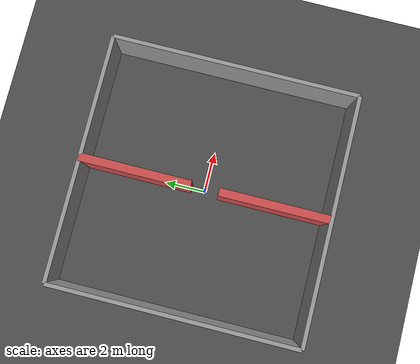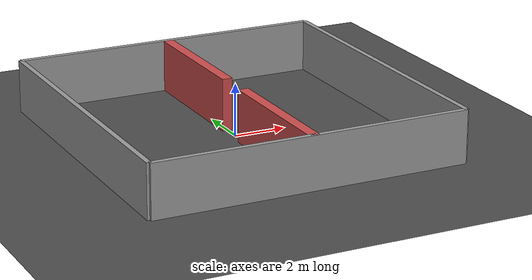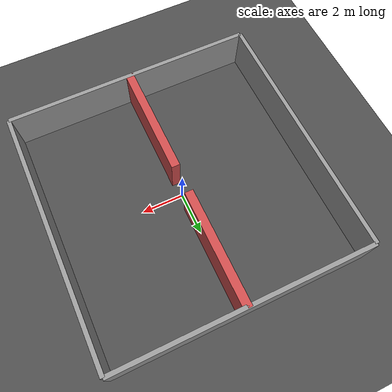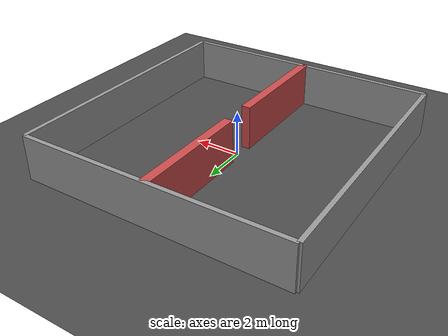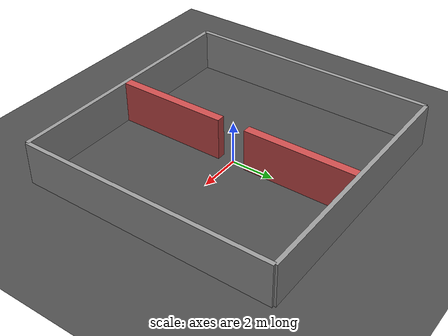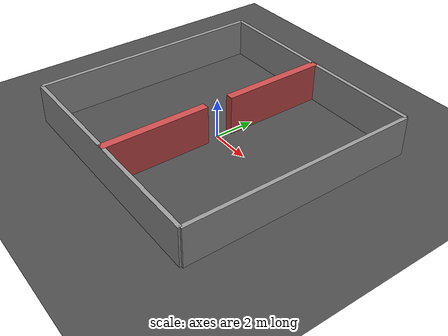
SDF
<?xml version="1.0" ?>
<sdf version="1.8">
  <world name="warehouse_world">
    <physics name="1ms" type="ignored">
      <max_step_size>0.004</max_step_size>
      <real_time_factor>1.0</real_time_factor>
    </physics>

    <!-- Required Modern Gazebo Sim Plugins -->
    <plugin
      filename="gz-sim-physics-system"
      name="gz::sim::systems::Physics">
    </plugin>
    <plugin
      filename="gz-sim-user-commands-system"
      name="gz::sim::systems::UserCommands">
    </plugin>
    <plugin
      filename="gz-sim-scene-broadcaster-system"
      name="gz::sim::systems::SceneBroadcaster">
    </plugin>
    <plugin
      filename="gz-sim-sensors-system"
      name="gz::sim::systems::Sensors">
      <render_engine>ogre2</render_engine>
    </plugin>

    <!-- GUI Layout Plugins for 3D Viewport -->
    <gui fullscreen="0">
      <!-- 3D Scene Viewport -->
      <plugin filename="MinimalScene" name="3D View">
        <gz-gui>
          <title>3D View</title>
          <property type="bool" key="showTitleBar">false</property>
          <property type="string" key="state">docked</property>
        </gz-gui>
        <engine>ogre2</engine>
        <scene>scene</scene>
        <ambient_light>0.5 0.5 0.5</ambient_light>
        <background_color>0.8 0.8 0.8</background_color>
        <camera_pose>-9.0 0.0 10.0 0 0.8 0</camera_pose>
      </plugin>

      <!-- Simulation Controls -->
      <plugin filename="WorldControl" name="World control">
        <gz-gui>
          <title>World control</title>
          <property type="bool" key="showTitleBar">false</property>
          <property type="bool" key="resizable">false</property>
          <property type="double" key="height">72</property>
          <property type="double" key="width">121</property>
          <property type="double" key="z">1</property>
          <property type="string" key="state">floating</property>
          <anchors target="3D View">
            <line own="left" target="left"/>
            <line own="bottom" target="bottom"/>
          </anchors>
        </gz-gui>
        <play_pause>true</play_pause>
        <step>true</step>
        <start_paused>false</start_paused>
      </plugin>

      <!-- Sim Time Info -->
      <plugin filename="WorldStats" name="World stats">
        <gz-gui>
          <title>World stats</title>
          <property type="bool" key="showTitleBar">false</property>
          <property type="bool" key="resizable">false</property>
          <property type="double" key="height">72</property>
          <property type="double" key="width">290</property>
          <property type="double" key="z">1</property>
          <property type="string" key="state">floating</property>
          <anchors target="3D View">
            <line own="right" target="right"/>
            <line own="bottom" target="bottom"/>
          </anchors>
        </gz-gui>
        <sim_time>true</sim_time>
        <real_time>true</real_time>
        <real_time_factor>true</real_time_factor>
        <iterations>true</iterations>
      </plugin>
    </gui>

    <!-- Directional Light (Sun) -->
    <light type="directional" name="sun">
      <cast_shadows>true</cast_shadows>
      <pose>0 0 10 0 0 0</pose>
      <diffuse>0.8 0.8 0.8 1</diffuse>
      <specular>0.2 0.2 0.2 1</specular>
      <attenuation>
        <range>1000</range>
        <constant>0.9</constant>
        <linear>0.01</linear>
        <quadratic>0.001</quadratic>
      </attenuation>
      <direction>-0.5 0.1 -0.9</direction>
    </light>

    <!-- Ground Plane -->
    <model name="ground_plane">
      <static>true</static>
      <link name="link">
        <collision name="collision">
          <geometry>
            <plane>
              <normal>0 0 1</normal>
              <size>30 30</size>
            </plane>
          </geometry>
          <surface>
            <friction>
              <ode>
                <mu>1.0</mu>
                <mu2>1.0</mu2>
              </ode>
            </friction>
          </surface>
        </collision>
        <visual name="visual">
          <geometry>
            <plane>
              <normal>0 0 1</normal>
              <size>30 30</size>
            </plane>
          </geometry>
          <material>
            <ambient>0.3 0.3 0.3 1</ambient>
            <diffuse>0.3 0.3 0.3 1</diffuse>
          </material>
        </visual>
      </link>
    </model>

    <!-- Perimeter Boundary Walls -->
    <model name="wall_north">
      <static>true</static>
      <pose>0 6 1 0 0 0</pose>
      <link name="link">
        <collision name="col"><geometry><box><size>12 0.2 2</size></box></geometry></collision>
        <visual name="vis">
          <geometry><box><size>12 0.2 2</size></box></geometry>
          <material><ambient>0.6 0.6 0.6 1</ambient><diffuse>0.6 0.6 0.6 1</diffuse></material>
        </visual>
      </link>
    </model>

    <model name="wall_south">
      <static>true</static>
      <pose>0 -6 1 0 0 0</pose>
      <link name="link">
        <collision name="col"><geometry><box><size>12 0.2 2</size></box></geometry></collision>
        <visual name="vis">
          <geometry><box><size>12 0.2 2</size></box></geometry>
          <material><ambient>0.6 0.6 0.6 1</ambient><diffuse>0.6 0.6 0.6 1</diffuse></material>
        </visual>
      </link>
    </model>

    <model name="wall_west">
      <static>true</static>
      <pose>-6 0 1 0 0 0</pose>
      <link name="link">
        <collision name="col"><geometry><box><size>0.2 12 2</size></box></geometry></collision>
        <visual name="vis">
          <geometry><box><size>0.2 12 2</size></box></geometry>
          <material><ambient>0.6 0.6 0.6 1</ambient><diffuse>0.6 0.6 0.6 1</diffuse></material>
        </visual>
      </link>
    </model>

    <model name="wall_east">
      <static>true</static>
      <pose>6 0 1 0 0 0</pose>
      <link name="link">
        <collision name="col"><geometry><box><size>0.2 12 2</size></box></geometry></collision>
        <visual name="vis">
          <geometry><box><size>0.2 12 2</size></box></geometry>
          <material><ambient>0.6 0.6 0.6 1</ambient><diffuse>0.6 0.6 0.6 1</diffuse></material>
        </visual>
      </link>
    </model>

    <!-- Central Choke Point Walls: Leaves a 1.15m narrow corridor at (0,0) -->
    <model name="choke_wall_top">
      <static>true</static>
      <pose>0 3.36 1 0 0 0</pose>
      <link name="link">
        <collision name="col"><geometry><box><size>0.4 5.4 2</size></box></geometry></collision>
        <visual name="vis">
          <geometry><box><size>0.4 5.4 2</size></box></geometry>
          <material><ambient>0.8 0.3 0.3 1</ambient><diffuse>0.8 0.3 0.3 1</diffuse></material>
        </visual>
      </link>
    </model>

    <model name="choke_wall_bottom">
      <static>true</static>
      <pose>0 -3.36 1 0 0 0</pose>
      <link name="link">
        <collision name="col"><geometry><box><size>0.4 5.4 2</size></box></geometry></collision>
        <visual name="vis">
          <geometry><box><size>0.4 5.4 2</size></box></geometry>
          <material><ambient>0.8 0.3 0.3 1</ambient><diffuse>0.8 0.3 0.3 1</diffuse></material>
        </visual>
      </link>
    </model>

  </world>
</sdf>
